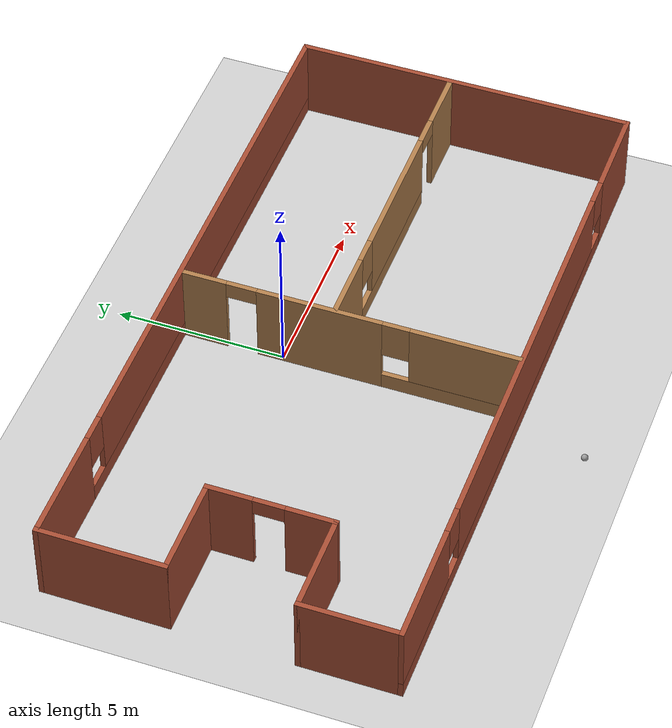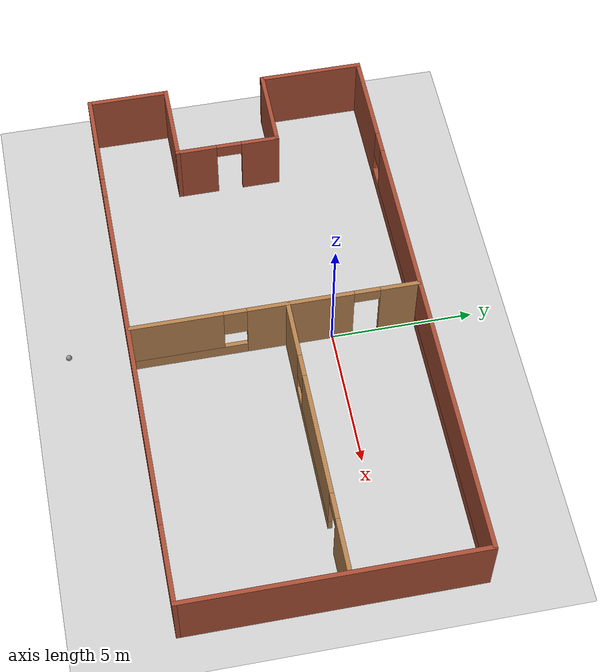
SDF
<sdf version="1.6">
 <world name="default">
  <plugin name="welcome_message" filename="libwelcome_message.so"/>
  <light name="sun" type="directional">
   <pose>0 0 10 0 -0 0</pose>
   <diffuse>0.8 0.8 0.8 1</diffuse>
   <specular>0.2 0.2 0.2 1</specular>
   <attenuation>
    <range>1000</range>
    <constant>0.9</constant>
    <linear>0.01</linear>
    <quadratic>0.001</quadratic>
   </attenuation>
   <direction>-0.5 0.1 -0.9</direction>
  </light>
  <model name="ground_plane">
   <static>1</static>
   <link name="link">
    <collision name="collision">
     <geometry><plane><normal>0 0 1</normal><size>100 100</size></plane></geometry>
     <surface>
      <contact><collide_bitmask>65535</collide_bitmask></contact>
      <friction><ode><mu>100</mu><mu2>50</mu2></ode></friction>
     </surface>
    </collision>
    <visual name="visual">
     <cast_shadows>0</cast_shadows>
     <geometry><plane><normal>0 0 1</normal><size>100 100</size></plane></geometry>
     <material>
      <script><uri>file://media/materials/scripts/gazebo.material</uri><name>Gazebo/Grey</name></script>
     </material>
    </visual>
   </link>
  </model>
  <gravity>0 0 -9.8</gravity>
  <magnetic_field>6e-06 2.3e-05 -4.2e-05</magnetic_field>
  <atmosphere type="adiabatic"/>
  <physics name="default_physics" default="0" type="ode">
   <max_step_size>0.001</max_step_size>
   <real_time_factor>1</real_time_factor>
   <real_time_update_rate>1000</real_time_update_rate>
  </physics>
  <scene><ambient>0.4 0.4 0.4 1</ambient><background>0.7 0.7 0.7 1</background><shadows>1</shadows></scene>
  <spherical_coordinates>
   <surface_model>EARTH_WGS84</surface_model>
   <latitude_deg>0</latitude_deg>
   <longitude_deg>0</longitude_deg>
   <elevation>0</elevation>
   <heading_deg>0</heading_deg>
  </spherical_coordinates>
  <model name="Building_0">
   <pose>0 -2 0 0 -0 0</pose>
   <link name="Wall_40">
    <pose>-0 5 0 0 -0 0</pose>
    <visual name="Wall_40_Visual_0">
     <pose>-8.36862 0 1.25 0 -0 0</pose>
     <geometry><box><size>3.41276 0.15 2.5</size></box></geometry>
     <material>
      <script><uri>file://media/materials/scripts/gazebo.material</uri><name>Gazebo/Bricks</name></script>
      <ambient>1 1 1 1</ambient>
     </material>
     <meta><layer>0</layer></meta>
    </visual>
    <collision name="Wall_40_Collision_0">
     <geometry><box><size>3.41276 0.15 2.5</size></box></geometry>
     <pose>-8.36862 0 1.25 0 -0 0</pose>
    </collision>
    <visual name="Wall_40_Visual_1">
     <pose>1.70638 0 0.25 0 -0 0</pose>
     <geometry><box><size>16.7372 0.15 0.5</size></box></geometry>
     <material>
      <script><uri>file://media/materials/scripts/gazebo.material</uri><name>Gazebo/Bricks</name></script>
      <ambient>1 1 1 1</ambient>
     </material>
     <meta><layer>0</layer></meta>
    </visual>
    <collision name="Wall_40_Collision_1">
     <geometry><box><size>16.7372 0.15 0.5</size></box></geometry>
     <pose>1.70638 0 0.25 0 -0 0</pose>
    </collision>
    <visual name="Wall_40_Visual_2">
     <pose>2.10638 0 1.5 0 -0 0</pose>
     <geometry><box><size>15.9372 0.15 2</size></box></geometry>
     <material>
      <script><uri>file://media/materials/scripts/gazebo.material</uri><name>Gazebo/Bricks</name></script>
      <ambient>1 1 1 1</ambient>
     </material>
     <meta><layer>0</layer></meta>
    </visual>
    <collision name="Wall_40_Collision_2">
     <geometry><box><size>15.9372 0.15 2</size></box></geometry>
     <pose>2.10638 0 1.5 0 -0 0</pose>
    </collision>
    <visual name="Wall_40_Visual_3">
     <pose>-6.26225 0 1.9 0 -0 0</pose>
     <geometry><box><size>0.8 0.15 1.2</size></box></geometry>
     <material>
      <script><uri>file://media/materials/scripts/gazebo.material</uri><name>Gazebo/Bricks</name></script>
      <ambient>1 1 1 1</ambient>
     </material>
     <meta><layer>0</layer></meta>
    </visual>
    <collision name="Wall_40_Collision_3">
     <geometry><box><size>0.8 0.15 1.2</size></box></geometry>
     <pose>-6.26225 0 1.9 0 -0 0</pose>
    </collision>
   </link>
   <link name="Wall_42">
    <pose>-0 -5 0 0 -0 3.14159</pose>
    <visual name="Wall_42_Visual_0">
     <pose>-8.69391 0 1.25 0 -0 0</pose>
     <geometry><box><size>2.76218 0.15 2.5</size></box></geometry>
     <material>
      <script><uri>file://media/materials/scripts/gazebo.material</uri><name>Gazebo/Bricks</name></script>
      <ambient>1 1 1 1</ambient>
     </material>
     <meta><layer>0</layer></meta>
    </visual>
    <collision name="Wall_42_Collision_0">
     <geometry><box><size>2.76218 0.15 2.5</size></box></geometry>
     <pose>-8.69391 0 1.25 0 -0 0</pose>
    </collision>
    <visual name="Wall_42_Visual_1">
     <pose>1.38109 0 0.25 0 -0 0</pose>
     <geometry><box><size>17.3878 0.15 0.5</size></box></geometry>
     <material>
      <script><uri>file://media/materials/scripts/gazebo.material</uri><name>Gazebo/Bricks</name></script>
      <ambient>1 1 1 1</ambient>
     </material>
     <meta><layer>0</layer></meta>
    </visual>
    <collision name="Wall_42_Collision_1">
     <geometry><box><size>17.3878 0.15 0.5</size></box></geometry>
     <pose>1.38109 0 0.25 0 -0 0</pose>
    </collision>
    <visual name="Wall_42_Visual_2">
     <pose>-0.427577 0 1.5 0 -0 0</pose>
     <geometry><box><size>12.1705 0.15 2</size></box></geometry>
     <material>
      <script><uri>file://media/materials/scripts/gazebo.material</uri><name>Gazebo/Bricks</name></script>
      <ambient>1 1 1 1</ambient>
     </material>
     <meta><layer>0</layer></meta>
    </visual>
    <collision name="Wall_42_Collision_2">
     <geometry><box><size>12.1705 0.15 2</size></box></geometry>
     <pose>-0.427577 0 1.5 0 -0 0</pose>
    </collision>
    <visual name="Wall_42_Visual_3">
     <pose>8.26633 0 1.5 0 -0 0</pose>
     <geometry><box><size>3.61734 0.15 2</size></box></geometry>
     <material>
      <script><uri>file://media/materials/scripts/gazebo.material</uri><name>Gazebo/Bricks</name></script>
      <ambient>1 1 1 1</ambient>
     </material>
     <meta><layer>0</layer></meta>
    </visual>
    <collision name="Wall_42_Collision_3">
     <geometry><box><size>3.61734 0.15 2</size></box></geometry>
     <pose>8.26633 0 1.5 0 -0 0</pose>
    </collision>
    <visual name="Wall_42_Visual_4">
     <pose>-6.91282 0 1.9 0 -0 0</pose>
     <geometry><box><size>0.8 0.15 1.2</size></box></geometry>
     <material>
      <script><uri>file://media/materials/scripts/gazebo.material</uri><name>Gazebo/Bricks</name></script>
      <ambient>1 1 1 1</ambient>
     </material>
     <meta><layer>0</layer></meta>
    </visual>
    <collision name="Wall_42_Collision_4">
     <geometry><box><size>0.8 0.15 1.2</size></box></geometry>
     <pose>-6.91282 0 1.9 0 -0 0</pose>
    </collision>
    <visual name="Wall_42_Visual_5">
     <pose>6.05766 0 1.9 0 -0 0</pose>
     <geometry><box><size>0.8 0.15 1.2</size></box></geometry>
     <material>
      <script><uri>file://media/materials/scripts/gazebo.material</uri><name>Gazebo/Bricks</name></script>
      <ambient>1 1 1 1</ambient>
     </material>
     <meta><layer>0</layer></meta>
    </visual>
    <collision name="Wall_42_Collision_5">
     <geometry><box><size>0.8 0.15 1.2</size></box></geometry>
     <pose>6.05766 0 1.9 0 -0 0</pose>
    </collision>
   </link>
   <link name="Wall_44">
    <collision name="Wall_44_Collision">
     <geometry><box><size>10.15 0.15 2.5</size></box></geometry>
     <pose>0 0 1.25 0 -0 0</pose>
    </collision>
    <visual name="Wall_44_Visual">
     <pose>0 0 1.25 0 -0 0</pose>
     <geometry><box><size>10.15 0.15 2.5</size></box></geometry>
     <material>
      <script><uri>file://media/materials/scripts/gazebo.material</uri><name>Gazebo/Bricks</name></script>
      <ambient>1 1 1 1</ambient>
     </material>
     <meta><layer>0</layer></meta>
    </visual>
    <pose>10 0 0 0 -0 -1.5708</pose>
   </link>
   <link name="Wall_46">
    <collision name="Wall_46_Collision">
     <geometry><box><size>3.75 0.15 2.5</size></box></geometry>
     <pose>0 0 1.25 0 -0 0</pose>
    </collision>
    <visual name="Wall_46_Visual">
     <pose>0 0 1.25 0 -0 0</pose>
     <geometry><box><size>3.75 0.15 2.5</size></box></geometry>
     <material>
      <script><uri>file://media/materials/scripts/gazebo.material</uri><name>Gazebo/Bricks</name></script>
      <ambient>1 1 1 1</ambient>
     </material>
     <meta><layer>0</layer></meta>
    </visual>
    <pose>-10 3.2 0 0 -0 -1.5708</pose>
   </link>
   <link name="Wall_47">
    <collision name="Wall_47_Collision">
     <geometry><box><size>3 0.15 2.5</size></box></geometry>
     <pose>0 0 1.25 0 -0 0</pose>
    </collision>
    <visual name="Wall_47_Visual">
     <pose>0 0 1.25 0 -0 0</pose>
     <geometry><box><size>3 0.15 2.5</size></box></geometry>
     <material>
      <script><uri>file://media/materials/scripts/gazebo.material</uri><name>Gazebo/Bricks</name></script>
      <ambient>1 1 1 1</ambient>
     </material>
     <meta><layer>0</layer></meta>
    </visual>
    <pose>-8.575 1.4 0 0 -0 0</pose>
   </link>
   <link name="Wall_48">
    <pose>-7.15 -0.4 0 0 -0 -1.5708</pose>
    <visual name="Wall_48_Visual_0">
     <pose>-1.18962 0 1.25 0 -0 0</pose>
     <geometry><box><size>1.37075 0.15 2.5</size></box></geometry>
     <material>
      <script><uri>file://media/materials/scripts/gazebo.material</uri><name>Gazebo/Bricks</name></script>
      <ambient>1 1 1 1</ambient>
     </material>
     <meta><layer>0</layer></meta>
    </visual>
    <collision name="Wall_48_Collision_0">
     <geometry><box><size>1.37075 0.15 2.5</size></box></geometry>
     <pose>-1.18962 0 1.25 0 -0 0</pose>
    </collision>
    <visual name="Wall_48_Visual_1">
     <pose>1.13538 0 1.25 0 -0 0</pose>
     <geometry><box><size>1.47925 0.15 2.5</size></box></geometry>
     <material>
      <script><uri>file://media/materials/scripts/gazebo.material</uri><name>Gazebo/Bricks</name></script>
      <ambient>1 1 1 1</ambient>
     </material>
     <meta><layer>0</layer></meta>
    </visual>
    <collision name="Wall_48_Collision_1">
     <geometry><box><size>1.47925 0.15 2.5</size></box></geometry>
     <pose>1.13538 0 1.25 0 -0 0</pose>
    </collision>
    <visual name="Wall_48_Visual_2">
     <pose>-0.05425 0 2.25 0 -0 0</pose>
     <geometry><box><size>0.9 0.15 0.5</size></box></geometry>
     <material>
      <script><uri>file://media/materials/scripts/gazebo.material</uri><name>Gazebo/Bricks</name></script>
      <ambient>1 1 1 1</ambient>
     </material>
     <meta><layer>0</layer></meta>
    </visual>
    <collision name="Wall_48_Collision_2">
     <geometry><box><size>0.9 0.15 0.5</size></box></geometry>
     <pose>-0.05425 0 2.25 0 -0 0</pose>
    </collision>
   </link>
   <link name="Wall_49">
    <collision name="Wall_49_Collision">
     <geometry><box><size>3 0.15 2.5</size></box></geometry>
     <pose>0 0 1.25 0 -0 0</pose>
    </collision>
    <visual name="Wall_49_Visual">
     <pose>0 0 1.25 0 -0 0</pose>
     <geometry><box><size>3 0.15 2.5</size></box></geometry>
     <material>
      <script><uri>file://media/materials/scripts/gazebo.material</uri><name>Gazebo/Bricks</name></script>
      <ambient>1 1 1 1</ambient>
     </material>
     <meta><layer>0</layer></meta>
    </visual>
    <pose>-8.575 -2.2 0 0 -0 3.14159</pose>
   </link>
   <link name="Wall_50">
    <collision name="Wall_50_Collision">
     <geometry><box><size>2.807 0.15 2.5</size></box></geometry>
     <pose>0 0 1.25 0 -0 0</pose>
    </collision>
    <visual name="Wall_50_Visual">
     <pose>0 0 1.25 0 -0 0</pose>
     <geometry><box><size>2.807 0.15 2.5</size></box></geometry>
     <material>
      <script><uri>file://media/materials/scripts/gazebo.material</uri><name>Gazebo/Bricks</name></script>
      <ambient>1 1 1 1</ambient>
     </material>
     <meta><layer>0</layer></meta>
    </visual>
    <pose>-10 -3.5285 0 0 -0 -1.5708</pose>
   </link>
   <link name="Wall_54">
    <pose>-0.042962 0.007458 0 0 -0 -1.5708</pose>
    <visual name="Wall_54_Visual_0">
     <pose>-4.3078 0 1.25 0 -0 0</pose>
     <geometry><box><size>1.3844 0.15 2.5</size></box></geometry>
     <material>
      <script><uri>file://media/materials/scripts/gazebo.material</uri><name>Gazebo/Wood</name></script>
      <ambient>1 1 1 1</ambient>
     </material>
     <meta><layer>0</layer></meta>
    </visual>
    <collision name="Wall_54_Collision_0">
     <geometry><box><size>1.3844 0.15 2.5</size></box></geometry>
     <pose>-4.3078 0 1.25 0 -0 0</pose>
    </collision>
    <visual name="Wall_54_Visual_1">
     <pose>-0.86974 0 1.25 0 -0 0</pose>
     <geometry><box><size>3.69171 0.15 2.5</size></box></geometry>
     <material>
      <script><uri>file://media/materials/scripts/gazebo.material</uri><name>Gazebo/Wood</name></script>
      <ambient>1 1 1 1</ambient>
     </material>
     <meta><layer>0</layer></meta>
    </visual>
    <collision name="Wall_54_Collision_1">
     <geometry><box><size>3.69171 0.15 2.5</size></box></geometry>
     <pose>-0.86974 0 1.25 0 -0 0</pose>
    </collision>
    <visual name="Wall_54_Visual_2">
     <pose>2.98806 0 0.25 0 -0 0</pose>
     <geometry><box><size>4.02388 0.15 0.5</size></box></geometry>
     <material>
      <script><uri>file://media/materials/scripts/gazebo.material</uri><name>Gazebo/Wood</name></script>
      <ambient>1 1 1 1</ambient>
     </material>
     <meta><layer>0</layer></meta>
    </visual>
    <collision name="Wall_54_Collision_2">
     <geometry><box><size>4.02388 0.15 0.5</size></box></geometry>
     <pose>2.98806 0 0.25 0 -0 0</pose>
    </collision>
    <visual name="Wall_54_Visual_3">
     <pose>3.38806 0 1.5 0 -0 0</pose>
     <geometry><box><size>3.22388 0.15 2</size></box></geometry>
     <material>
      <script><uri>file://media/materials/scripts/gazebo.material</uri><name>Gazebo/Wood</name></script>
      <ambient>1 1 1 1</ambient>
     </material>
     <meta><layer>0</layer></meta>
    </visual>
    <collision name="Wall_54_Collision_3">
     <geometry><box><size>3.22388 0.15 2</size></box></geometry>
     <pose>3.38806 0 1.5 0 -0 0</pose>
    </collision>
    <visual name="Wall_54_Visual_4">
     <pose>1.37612 0 1.9 0 -0 0</pose>
     <geometry><box><size>0.8 0.15 1.2</size></box></geometry>
     <material>
      <script><uri>file://media/materials/scripts/gazebo.material</uri><name>Gazebo/Wood</name></script>
      <ambient>1 1 1 1</ambient>
     </material>
     <meta><layer>0</layer></meta>
    </visual>
    <collision name="Wall_54_Collision_4">
     <geometry><box><size>0.8 0.15 1.2</size></box></geometry>
     <pose>1.37612 0 1.9 0 -0 0</pose>
    </collision>
    <visual name="Wall_54_Visual_5">
     <pose>-3.1656 0 2.25 0 -0 0</pose>
     <geometry><box><size>0.9 0.15 0.5</size></box></geometry>
     <material>
      <script><uri>file://media/materials/scripts/gazebo.material</uri><name>Gazebo/Wood</name></script>
      <ambient>1 1 1 1</ambient>
     </material>
     <meta><layer>0</layer></meta>
    </visual>
    <collision name="Wall_54_Collision_5">
     <geometry><box><size>0.9 0.15 0.5</size></box></geometry>
     <pose>-3.1656 0 2.25 0 -0 0</pose>
    </collision>
   </link>
   <link name="Wall_56">
    <pose>4.92295 0.43166 0 0 -0 0</pose>
    <visual name="Wall_56_Visual_0">
     <pose>-3.93501 0 1.25 0 -0 0</pose>
     <geometry><box><size>2.12998 0.15 2.5</size></box></geometry>
     <material>
      <script><uri>file://media/materials/scripts/gazebo.material</uri><name>Gazebo/Wood</name></script>
      <ambient>1 1 1 1</ambient>
     </material>
     <meta><layer>0</layer></meta>
    </visual>
    <collision name="Wall_56_Collision_0">
     <geometry><box><size>2.12998 0.15 2.5</size></box></geometry>
     <pose>-3.93501 0 1.25 0 -0 0</pose>
    </collision>
    <visual name="Wall_56_Visual_1">
     <pose>4.10864 0 1.25 0 -0 0</pose>
     <geometry><box><size>1.78273 0.15 2.5</size></box></geometry>
     <material>
      <script><uri>file://media/materials/scripts/gazebo.material</uri><name>Gazebo/Wood</name></script>
      <ambient>1 1 1 1</ambient>
     </material>
     <meta><layer>0</layer></meta>
    </visual>
    <collision name="Wall_56_Collision_1">
     <geometry><box><size>1.78273 0.15 2.5</size></box></geometry>
     <pose>4.10864 0 1.25 0 -0 0</pose>
    </collision>
    <visual name="Wall_56_Visual_2">
     <pose>-0.276373 0 0.25 0 -0 0</pose>
     <geometry><box><size>5.18729 0.15 0.5</size></box></geometry>
     <material>
      <script><uri>file://media/materials/scripts/gazebo.material</uri><name>Gazebo/Wood</name></script>
      <ambient>1 1 1 1</ambient>
     </material>
     <meta><layer>0</layer></meta>
    </visual>
    <collision name="Wall_56_Collision_2">
     <geometry><box><size>5.18729 0.15 0.5</size></box></geometry>
     <pose>-0.276373 0 0.25 0 -0 0</pose>
    </collision>
    <visual name="Wall_56_Visual_3">
     <pose>0.123627 0 1.5 0 -0 0</pose>
     <geometry><box><size>4.38729 0.15 2</size></box></geometry>
     <material>
      <script><uri>file://media/materials/scripts/gazebo.material</uri><name>Gazebo/Wood</name></script>
      <ambient>1 1 1 1</ambient>
     </material>
     <meta><layer>0</layer></meta>
    </visual>
    <collision name="Wall_56_Collision_3">
     <geometry><box><size>4.38729 0.15 2</size></box></geometry>
     <pose>0.123627 0 1.5 0 -0 0</pose>
    </collision>
    <visual name="Wall_56_Visual_4">
     <pose>-2.47002 0 1.9 0 -0 0</pose>
     <geometry><box><size>0.8 0.15 1.2</size></box></geometry>
     <material>
      <script><uri>file://media/materials/scripts/gazebo.material</uri><name>Gazebo/Wood</name></script>
      <ambient>1 1 1 1</ambient>
     </material>
     <meta><layer>0</layer></meta>
    </visual>
    <collision name="Wall_56_Collision_4">
     <geometry><box><size>0.8 0.15 1.2</size></box></geometry>
     <pose>-2.47002 0 1.9 0 -0 0</pose>
    </collision>
    <visual name="Wall_56_Visual_5">
     <pose>2.76727 0 2.25 0 -0 0</pose>
     <geometry><box><size>0.9 0.15 0.5</size></box></geometry>
     <material>
      <script><uri>file://media/materials/scripts/gazebo.material</uri><name>Gazebo/Wood</name></script>
      <ambient>1 1 1 1</ambient>
     </material>
     <meta><layer>0</layer></meta>
    </visual>
    <collision name="Wall_56_Collision_5">
     <geometry><box><size>0.9 0.15 0.5</size></box></geometry>
     <pose>2.76727 0 2.25 0 -0 0</pose>
    </collision>
   </link>
   <static>1</static>
  </model>
  <model name="my_ball">
   <link name="link_0">
    <inertial>
     <mass>1</mass>
     <inertia><ixx>0.1</ixx><ixy>0</ixy><ixz>0</ixz><iyy>0.1</iyy><iyz>0</iyz><izz>0.1</izz></inertia>
    </inertial>
    <visual name="visual">
     <geometry><sphere><radius>0.1</radius></sphere></geometry>
     <material>
      <lighting>1</lighting>
      <script><uri>file://media/materials/scripts/gazebo.material</uri><name>Gazebo/Grey</name></script>
      <shader type="pixel"><normal_map>__default__</normal_map></shader>
      <ambient>1 1 1 1</ambient>
      <diffuse>1 1 1 1</diffuse>
      <specular>0.01 0.01 0.01 1</specular>
      <emissive>0 0 0 1</emissive>
     </material>
    </visual>
    <collision name="collision">
     <geometry><sphere><radius>0.1</radius></sphere></geometry>
     <surface>
      <friction>
       <ode><mu>1</mu><mu2>1</mu2><fdir1>0 0 0</fdir1><slip1>0</slip1><slip2>0</slip2></ode>
       <torsional>
        <coefficient>1</coefficient>
        <patch_radius>0</patch_radius>
        <surface_radius>0</surface_radius>
        <use_patch_radius>1</use_patch_radius>
        <ode><slip>0</slip></ode>
       </torsional>
      </friction>
      <bounce><restitution_coefficient>0</restitution_coefficient><threshold>1e+06</threshold></bounce>
      <contact>
       <collide_without_contact>0</collide_without_contact>
       <collide_without_contact_bitmask>1</collide_without_contact_bitmask>
       <collide_bitmask>1</collide_bitmask>
       <ode>
        <soft_cfm>0</soft_cfm>
        <soft_erp>0.2</soft_erp>
        <kp>1e+13</kp>
        <kd>1</kd>
        <max_vel>0.01</max_vel>
        <min_depth>0</min_depth>
       </ode>
       <bullet>
        <split_impulse>1</split_impulse>
        <split_impulse_penetration_threshold>-0.01</split_impulse_penetration_threshold>
        <soft_cfm>0</soft_cfm>
        <soft_erp>0.2</soft_erp>
        <kp>1e+13</kp>
        <kd>1</kd>
       </bullet>
      </contact>
     </surface>
    </collision>
   </link>
   <static>0</static>
   <pose>-0.799918 -9.12226 0.1 0 -0 0</pose>
  </model>
 </world>
</sdf>
